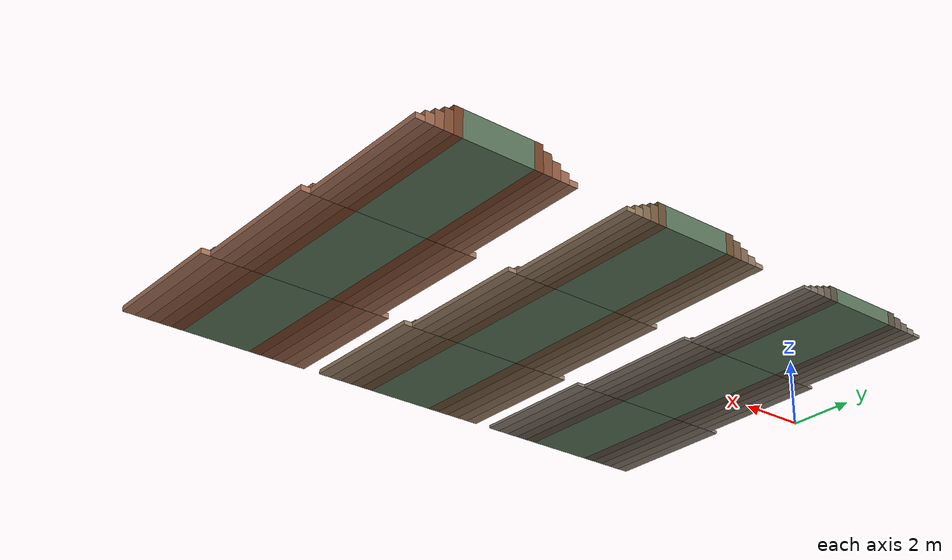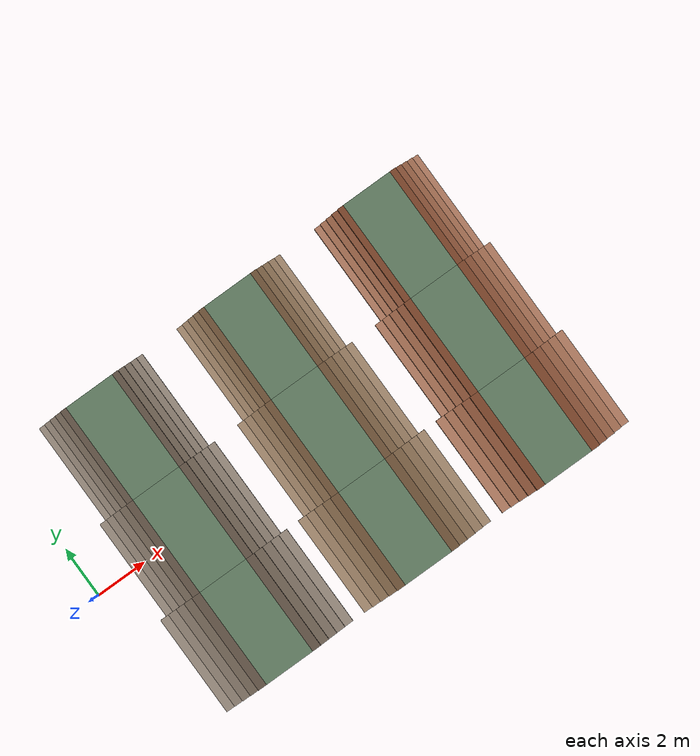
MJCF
<mujoco model="rough_terrain">

    <default>
        <default class="terrain">
            <geom contype="1" conaffinity="1" condim="3"
                  friction="1 0.01 0.01" group="0"/>
        </default>
    </default>

    <worldbody>
        <!-- ===== Back row: 0.08m rise per step ===== -->
        <body name="terrain_back_left" pos="4.0 4.0 0">
            <geom name="stair_back_left_up_1" class="terrain"
                  type="box" size="0.125 2.0 0.04" pos="-2.125 0 0.04"
                  rgba="0.55 0.50 0.45 1"/>
            <geom name="stair_back_left_up_2" class="terrain"
                  type="box" size="0.125 2.0 0.08" pos="-1.875 0 0.08"
                  rgba="0.50 0.45 0.40 1"/>
            <geom name="stair_back_left_up_3" class="terrain"
                  type="box" size="0.125 2.0 0.12" pos="-1.625 0 0.12"
                  rgba="0.45 0.40 0.35 1"/>
            <geom name="stair_back_left_up_4" class="terrain"
                  type="box" size="0.125 2.0 0.16" pos="-1.375 0 0.16"
                  rgba="0.40 0.35 0.30 1"/>
            <geom name="stair_back_left_up_5" class="terrain"
                  type="box" size="0.125 2.0 0.20" pos="-1.125 0 0.20"
                  rgba="0.35 0.30 0.25 1"/>
            <geom name="stair_back_left_platform" class="terrain"
                  type="box" size="1.0 2.0 0.20" pos="0 0 0.20"
                  rgba="0.35 0.45 0.35 1"/>
            <geom name="stair_back_left_down_1" class="terrain"
                  type="box" size="0.125 2.0 0.20" pos="1.125 0 0.20"
                  rgba="0.35 0.30 0.25 1"/>
            <geom name="stair_back_left_down_2" class="terrain"
                  type="box" size="0.125 2.0 0.16" pos="1.375 0 0.16"
                  rgba="0.40 0.35 0.30 1"/>
            <geom name="stair_back_left_down_3" class="terrain"
                  type="box" size="0.125 2.0 0.12" pos="1.625 0 0.12"
                  rgba="0.45 0.40 0.35 1"/>
            <geom name="stair_back_left_down_4" class="terrain"
                  type="box" size="0.125 2.0 0.08" pos="1.875 0 0.08"
                  rgba="0.50 0.45 0.40 1"/>
            <geom name="stair_back_left_down_5" class="terrain"
                  type="box" size="0.125 2.0 0.04" pos="2.125 0 0.04"
                  rgba="0.55 0.50 0.45 1"/>
        </body>

        <body name="terrain_back_mid" pos="4.0 0 0">
            <geom name="stair_back_mid_up_1" class="terrain"
                  type="box" size="0.15 2.0 0.04" pos="-2.35 0 0.04"
                  rgba="0.55 0.50 0.45 1"/>
            <geom name="stair_back_mid_up_2" class="terrain"
                  type="box" size="0.15 2.0 0.08" pos="-2.05 0 0.08"
                  rgba="0.50 0.45 0.40 1"/>
            <geom name="stair_back_mid_up_3" class="terrain"
                  type="box" size="0.15 2.0 0.12" pos="-1.75 0 0.12"
                  rgba="0.45 0.40 0.35 1"/>
            <geom name="stair_back_mid_up_4" class="terrain"
                  type="box" size="0.15 2.0 0.16" pos="-1.45 0 0.16"
                  rgba="0.40 0.35 0.30 1"/>
            <geom name="stair_back_mid_up_5" class="terrain"
                  type="box" size="0.15 2.0 0.20" pos="-1.15 0 0.20"
                  rgba="0.35 0.30 0.25 1"/>
            <geom name="stair_back_mid_platform" class="terrain"
                  type="box" size="1.0 2.0 0.20" pos="0 0 0.20"
                  rgba="0.35 0.45 0.35 1"/>
            <geom name="stair_back_mid_down_1" class="terrain"
                  type="box" size="0.15 2.0 0.20" pos="1.15 0 0.20"
                  rgba="0.35 0.30 0.25 1"/>
            <geom name="stair_back_mid_down_2" class="terrain"
                  type="box" size="0.15 2.0 0.16" pos="1.45 0 0.16"
                  rgba="0.40 0.35 0.30 1"/>
            <geom name="stair_back_mid_down_3" class="terrain"
                  type="box" size="0.15 2.0 0.12" pos="1.75 0 0.12"
                  rgba="0.45 0.40 0.35 1"/>
            <geom name="stair_back_mid_down_4" class="terrain"
                  type="box" size="0.15 2.0 0.08" pos="2.05 0 0.08"
                  rgba="0.50 0.45 0.40 1"/>
            <geom name="stair_back_mid_down_5" class="terrain"
                  type="box" size="0.15 2.0 0.04" pos="2.35 0 0.04"
                  rgba="0.55 0.50 0.45 1"/>
        </body>

        <body name="terrain_back_right" pos="4.0 -4.0 0">
            <geom name="stair_back_right_up_1" class="terrain"
                  type="box" size="0.175 2.0 0.04" pos="-2.575 0 0.04"
                  rgba="0.55 0.50 0.45 1"/>
            <geom name="stair_back_right_up_2" class="terrain"
                  type="box" size="0.175 2.0 0.08" pos="-2.225 0 0.08"
                  rgba="0.50 0.45 0.40 1"/>
            <geom name="stair_back_right_up_3" class="terrain"
                  type="box" size="0.175 2.0 0.12" pos="-1.875 0 0.12"
                  rgba="0.45 0.40 0.35 1"/>
            <geom name="stair_back_right_up_4" class="terrain"
                  type="box" size="0.175 2.0 0.16" pos="-1.525 0 0.16"
                  rgba="0.40 0.35 0.30 1"/>
            <geom name="stair_back_right_up_5" class="terrain"
                  type="box" size="0.175 2.0 0.20" pos="-1.175 0 0.20"
                  rgba="0.35 0.30 0.25 1"/>
            <geom name="stair_back_right_platform" class="terrain"
                  type="box" size="1.0 2.0 0.20" pos="0 0 0.20"
                  rgba="0.35 0.45 0.35 1"/>
            <geom name="stair_back_right_down_1" class="terrain"
                  type="box" size="0.175 2.0 0.20" pos="1.175 0 0.20"
                  rgba="0.35 0.30 0.25 1"/>
            <geom name="stair_back_right_down_2" class="terrain"
                  type="box" size="0.175 2.0 0.16" pos="1.525 0 0.16"
                  rgba="0.40 0.35 0.30 1"/>
            <geom name="stair_back_right_down_3" class="terrain"
                  type="box" size="0.175 2.0 0.12" pos="1.875 0 0.12"
                  rgba="0.45 0.40 0.35 1"/>
            <geom name="stair_back_right_down_4" class="terrain"
                  type="box" size="0.175 2.0 0.08" pos="2.225 0 0.08"
                  rgba="0.50 0.45 0.40 1"/>
            <geom name="stair_back_right_down_5" class="terrain"
                  type="box" size="0.175 2.0 0.04" pos="2.575 0 0.04"
                  rgba="0.55 0.50 0.45 1"/>
        </body>

        <!-- ===== Middle row: 0.12m rise per step ===== -->
        <body name="terrain_mid_left" pos="10.0 4.0 0">
            <geom name="stair_mid_left_up_1" class="terrain"
                  type="box" size="0.125 2.0 0.06" pos="-2.125 0 0.06"
                  rgba="0.60 0.50 0.40 1"/>
            <geom name="stair_mid_left_up_2" class="terrain"
                  type="box" size="0.125 2.0 0.12" pos="-1.875 0 0.12"
                  rgba="0.55 0.45 0.35 1"/>
            <geom name="stair_mid_left_up_3" class="terrain"
                  type="box" size="0.125 2.0 0.18" pos="-1.625 0 0.18"
                  rgba="0.50 0.40 0.30 1"/>
            <geom name="stair_mid_left_up_4" class="terrain"
                  type="box" size="0.125 2.0 0.24" pos="-1.375 0 0.24"
                  rgba="0.45 0.35 0.25 1"/>
            <geom name="stair_mid_left_up_5" class="terrain"
                  type="box" size="0.125 2.0 0.30" pos="-1.125 0 0.30"
                  rgba="0.40 0.30 0.20 1"/>
            <geom name="stair_mid_left_platform" class="terrain"
                  type="box" size="1.0 2.0 0.30" pos="0 0 0.30"
                  rgba="0.35 0.45 0.35 1"/>
            <geom name="stair_mid_left_down_1" class="terrain"
                  type="box" size="0.125 2.0 0.30" pos="1.125 0 0.30"
                  rgba="0.40 0.30 0.20 1"/>
            <geom name="stair_mid_left_down_2" class="terrain"
                  type="box" size="0.125 2.0 0.24" pos="1.375 0 0.24"
                  rgba="0.45 0.35 0.25 1"/>
            <geom name="stair_mid_left_down_3" class="terrain"
                  type="box" size="0.125 2.0 0.18" pos="1.625 0 0.18"
                  rgba="0.50 0.40 0.30 1"/>
            <geom name="stair_mid_left_down_4" class="terrain"
                  type="box" size="0.125 2.0 0.12" pos="1.875 0 0.12"
                  rgba="0.55 0.45 0.35 1"/>
            <geom name="stair_mid_left_down_5" class="terrain"
                  type="box" size="0.125 2.0 0.06" pos="2.125 0 0.06"
                  rgba="0.60 0.50 0.40 1"/>
        </body>

        <body name="terrain_mid_mid" pos="10.0 0 0">
            <geom name="stair_mid_mid_up_1" class="terrain"
                  type="box" size="0.15 2.0 0.06" pos="-2.35 0 0.06"
                  rgba="0.60 0.50 0.40 1"/>
            <geom name="stair_mid_mid_up_2" class="terrain"
                  type="box" size="0.15 2.0 0.12" pos="-2.05 0 0.12"
                  rgba="0.55 0.45 0.35 1"/>
            <geom name="stair_mid_mid_up_3" class="terrain"
                  type="box" size="0.15 2.0 0.18" pos="-1.75 0 0.18"
                  rgba="0.50 0.40 0.30 1"/>
            <geom name="stair_mid_mid_up_4" class="terrain"
                  type="box" size="0.15 2.0 0.24" pos="-1.45 0 0.24"
                  rgba="0.45 0.35 0.25 1"/>
            <geom name="stair_mid_mid_up_5" class="terrain"
                  type="box" size="0.15 2.0 0.30" pos="-1.15 0 0.30"
                  rgba="0.40 0.30 0.20 1"/>
            <geom name="stair_mid_mid_platform" class="terrain"
                  type="box" size="1.0 2.0 0.30" pos="0 0 0.30"
                  rgba="0.35 0.45 0.35 1"/>
            <geom name="stair_mid_mid_down_1" class="terrain"
                  type="box" size="0.15 2.0 0.30" pos="1.15 0 0.30"
                  rgba="0.40 0.30 0.20 1"/>
            <geom name="stair_mid_mid_down_2" class="terrain"
                  type="box" size="0.15 2.0 0.24" pos="1.45 0 0.24"
                  rgba="0.45 0.35 0.25 1"/>
            <geom name="stair_mid_mid_down_3" class="terrain"
                  type="box" size="0.15 2.0 0.18" pos="1.75 0 0.18"
                  rgba="0.50 0.40 0.30 1"/>
            <geom name="stair_mid_mid_down_4" class="terrain"
                  type="box" size="0.15 2.0 0.12" pos="2.05 0 0.12"
                  rgba="0.55 0.45 0.35 1"/>
            <geom name="stair_mid_mid_down_5" class="terrain"
                  type="box" size="0.15 2.0 0.06" pos="2.35 0 0.06"
                  rgba="0.60 0.50 0.40 1"/>
        </body>

        <body name="terrain_mid_right" pos="10.0 -4.0 0">
            <geom name="stair_mid_right_up_1" class="terrain"
                  type="box" size="0.175 2.0 0.06" pos="-2.575 0 0.06"
                  rgba="0.60 0.50 0.40 1"/>
            <geom name="stair_mid_right_up_2" class="terrain"
                  type="box" size="0.175 2.0 0.12" pos="-2.225 0 0.12"
                  rgba="0.55 0.45 0.35 1"/>
            <geom name="stair_mid_right_up_3" class="terrain"
                  type="box" size="0.175 2.0 0.18" pos="-1.875 0 0.18"
                  rgba="0.50 0.40 0.30 1"/>
            <geom name="stair_mid_right_up_4" class="terrain"
                  type="box" size="0.175 2.0 0.24" pos="-1.525 0 0.24"
                  rgba="0.45 0.35 0.25 1"/>
            <geom name="stair_mid_right_up_5" class="terrain"
                  type="box" size="0.175 2.0 0.30" pos="-1.175 0 0.30"
                  rgba="0.40 0.30 0.20 1"/>
            <geom name="stair_mid_right_platform" class="terrain"
                  type="box" size="1.0 2.0 0.30" pos="0 0 0.30"
                  rgba="0.35 0.45 0.35 1"/>
            <geom name="stair_mid_right_down_1" class="terrain"
                  type="box" size="0.175 2.0 0.30" pos="1.175 0 0.30"
                  rgba="0.40 0.30 0.20 1"/>
            <geom name="stair_mid_right_down_2" class="terrain"
                  type="box" size="0.175 2.0 0.24" pos="1.525 0 0.24"
                  rgba="0.45 0.35 0.25 1"/>
            <geom name="stair_mid_right_down_3" class="terrain"
                  type="box" size="0.175 2.0 0.18" pos="1.875 0 0.18"
                  rgba="0.50 0.40 0.30 1"/>
            <geom name="stair_mid_right_down_4" class="terrain"
                  type="box" size="0.175 2.0 0.12" pos="2.225 0 0.12"
                  rgba="0.55 0.45 0.35 1"/>
            <geom name="stair_mid_right_down_5" class="terrain"
                  type="box" size="0.175 2.0 0.06" pos="2.575 0 0.06"
                  rgba="0.60 0.50 0.40 1"/>
        </body>

        <!-- ===== Front row: 0.15m rise per step ===== -->
        <body name="terrain_front_left" pos="16.0 4.0 0">
            <geom name="stair_front_left_up_1" class="terrain"
                  type="box" size="0.125 2.0 0.075" pos="-2.125 0 0.075"
                  rgba="0.65 0.45 0.35 1"/>
            <geom name="stair_front_left_up_2" class="terrain"
                  type="box" size="0.125 2.0 0.150" pos="-1.875 0 0.150"
                  rgba="0.60 0.40 0.30 1"/>
            <geom name="stair_front_left_up_3" class="terrain"
                  type="box" size="0.125 2.0 0.225" pos="-1.625 0 0.225"
                  rgba="0.55 0.35 0.25 1"/>
            <geom name="stair_front_left_up_4" class="terrain"
                  type="box" size="0.125 2.0 0.300" pos="-1.375 0 0.300"
                  rgba="0.50 0.30 0.20 1"/>
            <geom name="stair_front_left_up_5" class="terrain"
                  type="box" size="0.125 2.0 0.375" pos="-1.125 0 0.375"
                  rgba="0.45 0.25 0.15 1"/>
            <geom name="stair_front_left_platform" class="terrain"
                  type="box" size="1.0 2.0 0.375" pos="0 0 0.375"
                  rgba="0.35 0.45 0.35 1"/>
            <geom name="stair_front_left_down_1" class="terrain"
                  type="box" size="0.125 2.0 0.375" pos="1.125 0 0.375"
                  rgba="0.45 0.25 0.15 1"/>
            <geom name="stair_front_left_down_2" class="terrain"
                  type="box" size="0.125 2.0 0.300" pos="1.375 0 0.300"
                  rgba="0.50 0.30 0.20 1"/>
            <geom name="stair_front_left_down_3" class="terrain"
                  type="box" size="0.125 2.0 0.225" pos="1.625 0 0.225"
                  rgba="0.55 0.35 0.25 1"/>
            <geom name="stair_front_left_down_4" class="terrain"
                  type="box" size="0.125 2.0 0.150" pos="1.875 0 0.150"
                  rgba="0.60 0.40 0.30 1"/>
            <geom name="stair_front_left_down_5" class="terrain"
                  type="box" size="0.125 2.0 0.075" pos="2.125 0 0.075"
                  rgba="0.65 0.45 0.35 1"/>
        </body>

        <body name="terrain_front_mid" pos="16.0 0 0">
            <geom name="stair_front_mid_up_1" class="terrain"
                  type="box" size="0.15 2.0 0.075" pos="-2.35 0 0.075"
                  rgba="0.65 0.45 0.35 1"/>
            <geom name="stair_front_mid_up_2" class="terrain"
                  type="box" size="0.15 2.0 0.150" pos="-2.05 0 0.150"
                  rgba="0.60 0.40 0.30 1"/>
            <geom name="stair_front_mid_up_3" class="terrain"
                  type="box" size="0.15 2.0 0.225" pos="-1.75 0 0.225"
                  rgba="0.55 0.35 0.25 1"/>
            <geom name="stair_front_mid_up_4" class="terrain"
                  type="box" size="0.15 2.0 0.300" pos="-1.45 0 0.300"
                  rgba="0.50 0.30 0.20 1"/>
            <geom name="stair_front_mid_up_5" class="terrain"
                  type="box" size="0.15 2.0 0.375" pos="-1.15 0 0.375"
                  rgba="0.45 0.25 0.15 1"/>
            <geom name="stair_front_mid_platform" class="terrain"
                  type="box" size="1.0 2.0 0.375" pos="0 0 0.375"
                  rgba="0.35 0.45 0.35 1"/>
            <geom name="stair_front_mid_down_1" class="terrain"
                  type="box" size="0.15 2.0 0.375" pos="1.15 0 0.375"
                  rgba="0.45 0.25 0.15 1"/>
            <geom name="stair_front_mid_down_2" class="terrain"
                  type="box" size="0.15 2.0 0.300" pos="1.45 0 0.300"
                  rgba="0.50 0.30 0.20 1"/>
            <geom name="stair_front_mid_down_3" class="terrain"
                  type="box" size="0.15 2.0 0.225" pos="1.75 0 0.225"
                  rgba="0.55 0.35 0.25 1"/>
            <geom name="stair_front_mid_down_4" class="terrain"
                  type="box" size="0.15 2.0 0.150" pos="2.05 0 0.150"
                  rgba="0.60 0.40 0.30 1"/>
            <geom name="stair_front_mid_down_5" class="terrain"
                  type="box" size="0.15 2.0 0.075" pos="2.35 0 0.075"
                  rgba="0.65 0.45 0.35 1"/>
        </body>

        <body name="terrain_front_right" pos="16.0 -4.0 0">
            <geom name="stair_front_right_up_1" class="terrain"
                  type="box" size="0.175 2.0 0.075" pos="-2.575 0 0.075"
                  rgba="0.65 0.45 0.35 1"/>
            <geom name="stair_front_right_up_2" class="terrain"
                  type="box" size="0.175 2.0 0.150" pos="-2.225 0 0.150"
                  rgba="0.60 0.40 0.30 1"/>
            <geom name="stair_front_right_up_3" class="terrain"
                  type="box" size="0.175 2.0 0.225" pos="-1.875 0 0.225"
                  rgba="0.55 0.35 0.25 1"/>
            <geom name="stair_front_right_up_4" class="terrain"
                  type="box" size="0.175 2.0 0.300" pos="-1.525 0 0.300"
                  rgba="0.50 0.30 0.20 1"/>
            <geom name="stair_front_right_up_5" class="terrain"
                  type="box" size="0.175 2.0 0.375" pos="-1.175 0 0.375"
                  rgba="0.45 0.25 0.15 1"/>
            <geom name="stair_front_right_platform" class="terrain"
                  type="box" size="1.0 2.0 0.375" pos="0 0 0.375"
                  rgba="0.35 0.45 0.35 1"/>
            <geom name="stair_front_right_down_1" class="terrain"
                  type="box" size="0.175 2.0 0.375" pos="1.175 0 0.375"
                  rgba="0.45 0.25 0.15 1"/>
            <geom name="stair_front_right_down_2" class="terrain"
                  type="box" size="0.175 2.0 0.300" pos="1.525 0 0.300"
                  rgba="0.50 0.30 0.20 1"/>
            <geom name="stair_front_right_down_3" class="terrain"
                  type="box" size="0.175 2.0 0.225" pos="1.875 0 0.225"
                  rgba="0.55 0.35 0.25 1"/>
            <geom name="stair_front_right_down_4" class="terrain"
                  type="box" size="0.175 2.0 0.150" pos="2.225 0 0.150"
                  rgba="0.60 0.40 0.30 1"/>
            <geom name="stair_front_right_down_5" class="terrain"
                  type="box" size="0.175 2.0 0.075" pos="2.575 0 0.075"
                  rgba="0.65 0.45 0.35 1"/>
        </body>
    </worldbody>

</mujoco>
